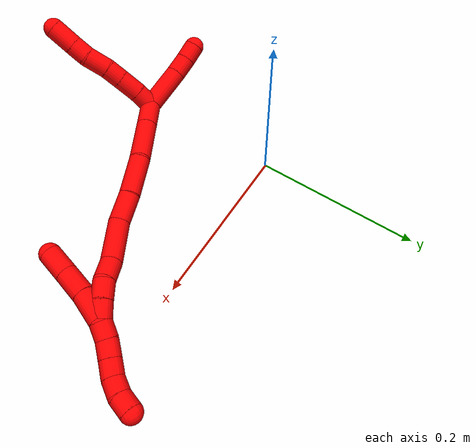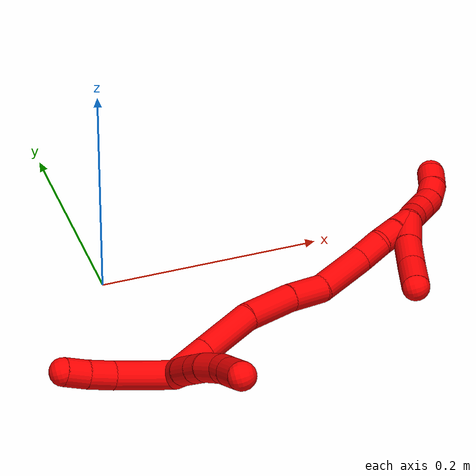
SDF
<sdf version="1.7">
 <world name="default">
  <model name="2">
   <static>0</static>
   <link name="2">
    <collision name="collision-cylinder-e_1_2_8">
     <pose>-0.007378 0.007824 0.005245 -0.980261 -0.664457 0.364095</pose>
     <geometry><cylinder><radius>0.0125</radius><length>0.023931</length></cylinder></geometry>
     <surface>
      <friction><ode><mu>1.16</mu><mu2>1.16</mu2><slip1>0</slip1><slip2>0</slip2></ode></friction>
      <contact><ode><kp>1e+06</kp><kd>1</kd><max_vel>0</max_vel><min_depth>0.001</min_depth></ode></contact>
     </surface>
    </collision>
    <visual name="visual-cylinder-e_1_2_8">
     <pose>-0.007378 0.007824 0.005245 -0.980261 -0.664457 0.364095</pose>
     <geometry><cylinder><radius>0.0125</radius><length>0.023931</length></cylinder></geometry>
     <material><ambient>1 0 0 1</ambient></material>
    </visual>
    <collision name="collision-cylinder-e_2_8_9">
     <pose>-0.023645 0.023575 0.017359 -0.856748 -0.703025 0.33187</pose>
     <geometry><cylinder><radius>0.0125</radius><length>0.027498</length></cylinder></geometry>
     <surface>
      <friction><ode><mu>1.16</mu><mu2>1.16</mu2><slip1>0</slip1><slip2>0</slip2></ode></friction>
      <contact><ode><kp>1e+06</kp><kd>1</kd><max_vel>0</max_vel><min_depth>0.001</min_depth></ode></contact>
     </surface>
    </collision>
    <visual name="visual-cylinder-e_2_8_9">
     <pose>-0.023645 0.023575 0.017359 -0.856748 -0.703025 0.33187</pose>
     <geometry><cylinder><radius>0.0125</radius><length>0.027498</length></cylinder></geometry>
     <material><ambient>1 0 0 1</ambient></material>
    </visual>
    <collision name="collision-cylinder-e_3_9_10">
     <pose>-0.039159 0.037291 0.029331 -0.84837 -0.709403 0.331447</pose>
     <geometry><cylinder><radius>0.0125</radius><length>0.02034</length></cylinder></geometry>
     <surface>
      <friction><ode><mu>1.16</mu><mu2>1.16</mu2><slip1>0</slip1><slip2>0</slip2></ode></friction>
      <contact><ode><kp>1e+06</kp><kd>1</kd><max_vel>0</max_vel><min_depth>0.001</min_depth></ode></contact>
     </surface>
    </collision>
    <visual name="visual-cylinder-e_3_9_10">
     <pose>-0.039159 0.037291 0.029331 -0.84837 -0.709403 0.331447</pose>
     <geometry><cylinder><radius>0.0125</radius><length>0.02034</length></cylinder></geometry>
     <material><ambient>1 0 0 1</ambient></material>
    </visual>
    <collision name="collision-cylinder-e_4_10_11">
     <pose>-0.055392 0.04919 0.042228 -0.664783 -0.770235 0.278054</pose>
     <geometry><cylinder><radius>0.0125</radius><length>0.027598</length></cylinder></geometry>
     <surface>
      <friction><ode><mu>1.16</mu><mu2>1.16</mu2><slip1>0</slip1><slip2>0</slip2></ode></friction>
      <contact><ode><kp>1e+06</kp><kd>1</kd><max_vel>0</max_vel><min_depth>0.001</min_depth></ode></contact>
     </surface>
    </collision>
    <visual name="visual-cylinder-e_4_10_11">
     <pose>-0.055392 0.04919 0.042228 -0.664783 -0.770235 0.278054</pose>
     <geometry><cylinder><radius>0.0125</radius><length>0.027598</length></cylinder></geometry>
     <material><ambient>1 0 0 1</ambient></material>
    </visual>
    <collision name="collision-cylinder-e_5_11_12">
     <pose>-0.073027 0.060206 0.053758 -0.920126 -0.915763 0.479029</pose>
     <geometry><cylinder><radius>0.0125</radius><length>0.020244</length></cylinder></geometry>
     <surface>
      <friction><ode><mu>1.16</mu><mu2>1.16</mu2><slip1>0</slip1><slip2>0</slip2></ode></friction>
      <contact><ode><kp>1e+06</kp><kd>1</kd><max_vel>0</max_vel><min_depth>0.001</min_depth></ode></contact>
     </surface>
    </collision>
    <visual name="visual-cylinder-e_5_11_12">
     <pose>-0.073027 0.060206 0.053758 -0.920126 -0.915763 0.479029</pose>
     <geometry><cylinder><radius>0.0125</radius><length>0.020244</length></cylinder></geometry>
     <material><ambient>1 0 0 1</ambient></material>
    </visual>
    <collision name="collision-cylinder-e_6_12_6">
     <pose>-0.092992 0.072747 0.062976 -0.94796 -0.903797 0.488077</pose>
     <geometry><cylinder><radius>0.0125</radius><length>0.03039</length></cylinder></geometry>
     <surface>
      <friction><ode><mu>1.16</mu><mu2>1.16</mu2><slip1>0</slip1><slip2>0</slip2></ode></friction>
      <contact><ode><kp>1e+06</kp><kd>1</kd><max_vel>0</max_vel><min_depth>0.001</min_depth></ode></contact>
     </surface>
    </collision>
    <visual name="visual-cylinder-e_6_12_6">
     <pose>-0.092992 0.072747 0.062976 -0.94796 -0.903797 0.488077</pose>
     <geometry><cylinder><radius>0.0125</radius><length>0.03039</length></cylinder></geometry>
     <material><ambient>1 0 0 1</ambient></material>
    </visual>
    <collision name="collision-cylinder-e_1_2_13">
     <pose>-0.00381 0.01335 -0.023746 -2.62941 -0.138953 0.519526</pose>
     <geometry><cylinder><radius>0.0125</radius><length>0.055013</length></cylinder></geometry>
     <surface>
      <friction><ode><mu>1.16</mu><mu2>1.16</mu2><slip1>0</slip1><slip2>0</slip2></ode></friction>
      <contact><ode><kp>1e+06</kp><kd>1</kd><max_vel>0</max_vel><min_depth>0.001</min_depth></ode></contact>
     </surface>
    </collision>
    <visual name="visual-cylinder-e_1_2_13">
     <pose>-0.00381 0.01335 -0.023746 -2.62941 -0.138953 0.519526</pose>
     <geometry><cylinder><radius>0.0125</radius><length>0.055013</length></cylinder></geometry>
     <material><ambient>1 0 0 1</ambient></material>
    </visual>
    <collision name="collision-cylinder-e_2_13_14">
     <pose>-0.009313 0.033084 -0.057278 -2.56366 -0.143916 0.475753</pose>
     <geometry><cylinder><radius>0.0125</radius><length>0.023612</length></cylinder></geometry>
     <surface>
      <friction><ode><mu>1.16</mu><mu2>1.16</mu2><slip1>0</slip1><slip2>0</slip2></ode></friction>
      <contact><ode><kp>1e+06</kp><kd>1</kd><max_vel>0</max_vel><min_depth>0.001</min_depth></ode></contact>
     </surface>
    </collision>
    <visual name="visual-cylinder-e_2_13_14">
     <pose>-0.009313 0.033084 -0.057278 -2.56366 -0.143916 0.475753</pose>
     <geometry><cylinder><radius>0.0125</radius><length>0.023612</length></cylinder></geometry>
     <material><ambient>1 0 0 1</ambient></material>
    </visual>
    <collision name="collision-cylinder-e_3_14_5">
     <pose>-0.01245 0.045979 -0.075414 -2.47925 -0.135554 0.389832</pose>
     <geometry><cylinder><radius>0.0125</radius><length>0.021375</length></cylinder></geometry>
     <surface>
      <friction><ode><mu>1.16</mu><mu2>1.16</mu2><slip1>0</slip1><slip2>0</slip2></ode></friction>
      <contact><ode><kp>1e+06</kp><kd>1</kd><max_vel>0</max_vel><min_depth>0.001</min_depth></ode></contact>
     </surface>
    </collision>
    <visual name="visual-cylinder-e_3_14_5">
     <pose>-0.01245 0.045979 -0.075414 -2.47925 -0.135554 0.389832</pose>
     <geometry><cylinder><radius>0.0125</radius><length>0.021375</length></cylinder></geometry>
     <material><ambient>1 0 0 1</ambient></material>
    </visual>
    <collision name="collision-cylinder-e_1_2_15">
     <pose>0.012448 -0.003376 0.013621 0.242984 0.72558 0.092625</pose>
     <geometry><cylinder><radius>0.0125</radius><length>0.037517</length></cylinder></geometry>
     <surface>
      <friction><ode><mu>1.16</mu><mu2>1.16</mu2><slip1>0</slip1><slip2>0</slip2></ode></friction>
      <contact><ode><kp>1e+06</kp><kd>1</kd><max_vel>0</max_vel><min_depth>0.001</min_depth></ode></contact>
     </surface>
    </collision>
    <visual name="visual-cylinder-e_1_2_15">
     <pose>0.012448 -0.003376 0.013621 0.242984 0.72558 0.092625</pose>
     <geometry><cylinder><radius>0.0125</radius><length>0.037517</length></cylinder></geometry>
     <material><ambient>1 0 0 1</ambient></material>
    </visual>
    <collision name="collision-cylinder-e_2_15_16">
     <pose>0.043171 -0.011727 0.047338 0.242657 0.72324 0.092174</pose>
     <geometry><cylinder><radius>0.0125</radius><length>0.055228</length></cylinder></geometry>
     <surface>
      <friction><ode><mu>1.16</mu><mu2>1.16</mu2><slip1>0</slip1><slip2>0</slip2></ode></friction>
      <contact><ode><kp>1e+06</kp><kd>1</kd><max_vel>0</max_vel><min_depth>0.001</min_depth></ode></contact>
     </surface>
    </collision>
    <visual name="visual-cylinder-e_2_15_16">
     <pose>0.043171 -0.011727 0.047338 0.242657 0.72324 0.092174</pose>
     <geometry><cylinder><radius>0.0125</radius><length>0.055228</length></cylinder></geometry>
     <material><ambient>1 0 0 1</ambient></material>
    </visual>
    <collision name="collision-cylinder-e_3_16_17">
     <pose>0.075075 -0.025684 0.08595 0.451667 0.584901 0.138129</pose>
     <geometry><cylinder><radius>0.0125</radius><length>0.049369</length></cylinder></geometry>
     <surface>
      <friction><ode><mu>1.16</mu><mu2>1.16</mu2><slip1>0</slip1><slip2>0</slip2></ode></friction>
      <contact><ode><kp>1e+06</kp><kd>1</kd><max_vel>0</max_vel><min_depth>0.001</min_depth></ode></contact>
     </surface>
    </collision>
    <visual name="visual-cylinder-e_3_16_17">
     <pose>0.075075 -0.025684 0.08595 0.451667 0.584901 0.138129</pose>
     <geometry><cylinder><radius>0.0125</radius><length>0.049369</length></cylinder></geometry>
     <material><ambient>1 0 0 1</ambient></material>
    </visual>
    <collision name="collision-cylinder-e_4_17_18">
     <pose>0.096899 -0.042298 0.11834 0.502848 0.477643 0.124911</pose>
     <geometry><cylinder><radius>0.0125</radius><length>0.035657</length></cylinder></geometry>
     <surface>
      <friction><ode><mu>1.16</mu><mu2>1.16</mu2><slip1>0</slip1><slip2>0</slip2></ode></friction>
      <contact><ode><kp>1e+06</kp><kd>1</kd><max_vel>0</max_vel><min_depth>0.001</min_depth></ode></contact>
     </surface>
    </collision>
    <visual name="visual-cylinder-e_4_17_18">
     <pose>0.096899 -0.042298 0.11834 0.502848 0.477643 0.124911</pose>
     <geometry><cylinder><radius>0.0125</radius><length>0.035657</length></cylinder></geometry>
     <material><ambient>1 0 0 1</ambient></material>
    </visual>
    <collision name="collision-cylinder-e_5_18_19">
     <pose>0.122404 -0.055732 0.150947 0.300422 0.723093 0.114348</pose>
     <geometry><cylinder><radius>0.0125</radius><length>0.052316</length></cylinder></geometry>
     <surface>
      <friction><ode><mu>1.16</mu><mu2>1.16</mu2><slip1>0</slip1><slip2>0</slip2></ode></friction>
      <contact><ode><kp>1e+06</kp><kd>1</kd><max_vel>0</max_vel><min_depth>0.001</min_depth></ode></contact>
     </surface>
    </collision>
    <visual name="visual-cylinder-e_5_18_19">
     <pose>0.122404 -0.055732 0.150947 0.300422 0.723093 0.114348</pose>
     <geometry><cylinder><radius>0.0125</radius><length>0.052316</length></cylinder></geometry>
     <material><ambient>1 0 0 1</ambient></material>
    </visual>
    <collision name="collision-cylinder-e_6_19_20">
     <pose>0.147139 -0.062046 0.17991 0.04984 0.62741 0.016172</pose>
     <geometry><cylinder><radius>0.0125</radius><length>0.025301</length></cylinder></geometry>
     <surface>
      <friction><ode><mu>1.16</mu><mu2>1.16</mu2><slip1>0</slip1><slip2>0</slip2></ode></friction>
      <contact><ode><kp>1e+06</kp><kd>1</kd><max_vel>0</max_vel><min_depth>0.001</min_depth></ode></contact>
     </surface>
    </collision>
    <visual name="visual-cylinder-e_6_19_20">
     <pose>0.147139 -0.062046 0.17991 0.04984 0.62741 0.016172</pose>
     <geometry><cylinder><radius>0.0125</radius><length>0.025301</length></cylinder></geometry>
     <material><ambient>1 0 0 1</ambient></material>
    </visual>
    <collision name="collision-cylinder-e_7_20_21">
     <pose>0.162553 -0.065907 0.197802 0.412242 0.762366 0.16721</pose>
     <geometry><cylinder><radius>0.0125</radius><length>0.023131</length></cylinder></geometry>
     <surface>
      <friction><ode><mu>1.16</mu><mu2>1.16</mu2><slip1>0</slip1><slip2>0</slip2></ode></friction>
      <contact><ode><kp>1e+06</kp><kd>1</kd><max_vel>0</max_vel><min_depth>0.001</min_depth></ode></contact>
     </surface>
    </collision>
    <visual name="visual-cylinder-e_7_20_21">
     <pose>0.162553 -0.065907 0.197802 0.412242 0.762366 0.16721</pose>
     <geometry><cylinder><radius>0.0125</radius><length>0.023131</length></cylinder></geometry>
     <material><ambient>1 0 0 1</ambient></material>
    </visual>
    <collision name="collision-cylinder-e_8_21_1">
     <pose>0.178162 -0.073119 0.211975 0.535279 0.788861 0.2273</pose>
     <geometry><cylinder><radius>0.0125</radius><length>0.02148</length></cylinder></geometry>
     <surface>
      <friction><ode><mu>1.16</mu><mu2>1.16</mu2><slip1>0</slip1><slip2>0</slip2></ode></friction>
      <contact><ode><kp>1e+06</kp><kd>1</kd><max_vel>0</max_vel><min_depth>0.001</min_depth></ode></contact>
     </surface>
    </collision>
    <visual name="visual-cylinder-e_8_21_1">
     <pose>0.178162 -0.073119 0.211975 0.535279 0.788861 0.2273</pose>
     <geometry><cylinder><radius>0.0125</radius><length>0.02148</length></cylinder></geometry>
     <material><ambient>1 0 0 1</ambient></material>
    </visual>
    <collision name="collision-cylinder-e_1_1_22">
     <pose>0.167957 -0.074122 0.216201 -2.24501 -1.36844 2.07606</pose>
     <geometry><cylinder><radius>0.0125</radius><length>0.036393</length></cylinder></geometry>
     <surface>
      <friction><ode><mu>1.16</mu><mu2>1.16</mu2><slip1>0</slip1><slip2>0</slip2></ode></friction>
      <contact><ode><kp>1e+06</kp><kd>1</kd><max_vel>0</max_vel><min_depth>0.001</min_depth></ode></contact>
     </surface>
    </collision>
    <visual name="visual-cylinder-e_1_1_22">
     <pose>0.167957 -0.074122 0.216201 -2.24501 -1.36844 2.07606</pose>
     <geometry><cylinder><radius>0.0125</radius><length>0.036393</length></cylinder></geometry>
     <material><ambient>1 0 0 1</ambient></material>
    </visual>
    <collision name="collision-cylinder-e_2_22_23">
     <pose>0.134154 -0.069373 0.213431 -1.82294 -1.44911 1.70327</pose>
     <geometry><cylinder><radius>0.0125</radius><length>0.032193</length></cylinder></geometry>
     <surface>
      <friction><ode><mu>1.16</mu><mu2>1.16</mu2><slip1>0</slip1><slip2>0</slip2></ode></friction>
      <contact><ode><kp>1e+06</kp><kd>1</kd><max_vel>0</max_vel><min_depth>0.001</min_depth></ode></contact>
     </surface>
    </collision>
    <visual name="visual-cylinder-e_2_22_23">
     <pose>0.134154 -0.069373 0.213431 -1.82294 -1.44911 1.70327</pose>
     <geometry><cylinder><radius>0.0125</radius><length>0.032193</length></cylinder></geometry>
     <material><ambient>1 0 0 1</ambient></material>
    </visual>
    <collision name="collision-cylinder-e_3_23_4">
     <pose>0.102675 -0.064951 0.212861 -1.60327 -1.40891 1.44104</pose>
     <geometry><cylinder><radius>0.0125</radius><length>0.031414</length></cylinder></geometry>
     <surface>
      <friction><ode><mu>1.16</mu><mu2>1.16</mu2><slip1>0</slip1><slip2>0</slip2></ode></friction>
      <contact><ode><kp>1e+06</kp><kd>1</kd><max_vel>0</max_vel><min_depth>0.001</min_depth></ode></contact>
     </surface>
    </collision>
    <visual name="visual-cylinder-e_3_23_4">
     <pose>0.102675 -0.064951 0.212861 -1.60327 -1.40891 1.44104</pose>
     <geometry><cylinder><radius>0.0125</radius><length>0.031414</length></cylinder></geometry>
     <material><ambient>1 0 0 1</ambient></material>
    </visual>
    <collision name="collision-cylinder-e_1_1_24">
     <pose>0.194094 -0.082063 0.220737 1.15372 0.981215 0.669031</pose>
     <geometry><cylinder><radius>0.0125</radius><length>0.02</length></cylinder></geometry>
     <surface>
      <friction><ode><mu>1.16</mu><mu2>1.16</mu2><slip1>0</slip1><slip2>0</slip2></ode></friction>
      <contact><ode><kp>1e+06</kp><kd>1</kd><max_vel>0</max_vel><min_depth>0.001</min_depth></ode></contact>
     </surface>
    </collision>
    <visual name="visual-cylinder-e_1_1_24">
     <pose>0.194094 -0.082063 0.220737 1.15372 0.981215 0.669031</pose>
     <geometry><cylinder><radius>0.0125</radius><length>0.02</length></cylinder></geometry>
     <material><ambient>1 0 0 1</ambient></material>
    </visual>
    <collision name="collision-cylinder-e_2_24_25">
     <pose>0.210512 -0.09133 0.227085 0.796015 0.945312 0.423513</pose>
     <geometry><cylinder><radius>0.0125</radius><length>0.02</length></cylinder></geometry>
     <surface>
      <friction><ode><mu>1.16</mu><mu2>1.16</mu2><slip1>0</slip1><slip2>0</slip2></ode></friction>
      <contact><ode><kp>1e+06</kp><kd>1</kd><max_vel>0</max_vel><min_depth>0.001</min_depth></ode></contact>
     </surface>
    </collision>
    <visual name="visual-cylinder-e_2_24_25">
     <pose>0.210512 -0.09133 0.227085 0.796015 0.945312 0.423513</pose>
     <geometry><cylinder><radius>0.0125</radius><length>0.02</length></cylinder></geometry>
     <material><ambient>1 0 0 1</ambient></material>
    </visual>
    <collision name="collision-cylinder-e_3_25_26">
     <pose>0.226711 -0.099557 0.235443 0.759081 0.942768 0.401157</pose>
     <geometry><cylinder><radius>0.0125</radius><length>0.02</length></cylinder></geometry>
     <surface>
      <friction><ode><mu>1.16</mu><mu2>1.16</mu2><slip1>0</slip1><slip2>0</slip2></ode></friction>
      <contact><ode><kp>1e+06</kp><kd>1</kd><max_vel>0</max_vel><min_depth>0.001</min_depth></ode></contact>
     </surface>
    </collision>
    <visual name="visual-cylinder-e_3_25_26">
     <pose>0.226711 -0.099557 0.235443 0.759081 0.942768 0.401157</pose>
     <geometry><cylinder><radius>0.0125</radius><length>0.02</length></cylinder></geometry>
     <material><ambient>1 0 0 1</ambient></material>
    </visual>
    <collision name="collision-cylinder-e_4_26_27">
     <pose>0.244235 -0.10476 0.242818 0.356565 1.23225 0.253813</pose>
     <geometry><cylinder><radius>0.0125</radius><length>0.02</length></cylinder></geometry>
     <surface>
      <friction><ode><mu>1.16</mu><mu2>1.16</mu2><slip1>0</slip1><slip2>0</slip2></ode></friction>
      <contact><ode><kp>1e+06</kp><kd>1</kd><max_vel>0</max_vel><min_depth>0.001</min_depth></ode></contact>
     </surface>
    </collision>
    <visual name="visual-cylinder-e_4_26_27">
     <pose>0.244235 -0.10476 0.242818 0.356565 1.23225 0.253813</pose>
     <geometry><cylinder><radius>0.0125</radius><length>0.02</length></cylinder></geometry>
     <material><ambient>1 0 0 1</ambient></material>
    </visual>
    <collision name="collision-cylinder-e_5_27_3">
     <pose>0.263606 -0.106786 0.24663 0.891142 1.45918 0.807237</pose>
     <geometry><cylinder><radius>0.0125</radius><length>0.02</length></cylinder></geometry>
     <surface>
      <friction><ode><mu>1.16</mu><mu2>1.16</mu2><slip1>0</slip1><slip2>0</slip2></ode></friction>
      <contact><ode><kp>1e+06</kp><kd>1</kd><max_vel>0</max_vel><min_depth>0.001</min_depth></ode></contact>
     </surface>
    </collision>
    <visual name="visual-cylinder-e_5_27_3">
     <pose>0.263606 -0.106786 0.24663 0.891142 1.45918 0.807237</pose>
     <geometry><cylinder><radius>0.0125</radius><length>0.02</length></cylinder></geometry>
     <material><ambient>1 0 0 1</ambient></material>
    </visual>
    <collision name="collision-sphere-3">
     <pose>0.273543 -0.107652 0.24733 0 -0 0</pose>
     <geometry><sphere><radius>0.0125</radius></sphere></geometry>
     <surface>
      <friction><ode><mu>1.16</mu><mu2>1.16</mu2><slip1>0</slip1><slip2>0</slip2></ode></friction>
      <contact><ode><kp>1e+06</kp><kd>1</kd><max_vel>0</max_vel><min_depth>0.001</min_depth></ode></contact>
     </surface>
    </collision>
    <visual name="visual-sphere-3">
     <pose>0.273543 -0.107652 0.24733 0 -0 0</pose>
     <geometry><sphere><radius>0.0125</radius></sphere></geometry>
     <material><ambient>1 0 0 1</ambient></material>
    </visual>
    <collision name="collision-sphere-27">
     <pose>0.253668 -0.10592 0.24593 0 -0 0</pose>
     <geometry><sphere><radius>0.0125</radius></sphere></geometry>
     <surface>
      <friction><ode><mu>1.16</mu><mu2>1.16</mu2><slip1>0</slip1><slip2>0</slip2></ode></friction>
      <contact><ode><kp>1e+06</kp><kd>1</kd><max_vel>0</max_vel><min_depth>0.001</min_depth></ode></contact>
     </surface>
    </collision>
    <visual name="visual-sphere-27">
     <pose>0.253668 -0.10592 0.24593 0 -0 0</pose>
     <geometry><sphere><radius>0.0125</radius></sphere></geometry>
     <material><ambient>1 0 0 1</ambient></material>
    </visual>
    <collision name="collision-sphere-26">
     <pose>0.234803 -0.103601 0.239706 0 -0 0</pose>
     <geometry><sphere><radius>0.0125</radius></sphere></geometry>
     <surface>
      <friction><ode><mu>1.16</mu><mu2>1.16</mu2><slip1>0</slip1><slip2>0</slip2></ode></friction>
      <contact><ode><kp>1e+06</kp><kd>1</kd><max_vel>0</max_vel><min_depth>0.001</min_depth></ode></contact>
     </surface>
    </collision>
    <visual name="visual-sphere-26">
     <pose>0.234803 -0.103601 0.239706 0 -0 0</pose>
     <geometry><sphere><radius>0.0125</radius></sphere></geometry>
     <material><ambient>1 0 0 1</ambient></material>
    </visual>
    <collision name="collision-sphere-25">
     <pose>0.218619 -0.095514 0.231181 0 -0 0</pose>
     <geometry><sphere><radius>0.0125</radius></sphere></geometry>
     <surface>
      <friction><ode><mu>1.16</mu><mu2>1.16</mu2><slip1>0</slip1><slip2>0</slip2></ode></friction>
      <contact><ode><kp>1e+06</kp><kd>1</kd><max_vel>0</max_vel><min_depth>0.001</min_depth></ode></contact>
     </surface>
    </collision>
    <visual name="visual-sphere-25">
     <pose>0.218619 -0.095514 0.231181 0 -0 0</pose>
     <geometry><sphere><radius>0.0125</radius></sphere></geometry>
     <material><ambient>1 0 0 1</ambient></material>
    </visual>
    <collision name="collision-sphere-24">
     <pose>0.202406 -0.087146 0.222989 0 -0 0</pose>
     <geometry><sphere><radius>0.0125</radius></sphere></geometry>
     <surface>
      <friction><ode><mu>1.16</mu><mu2>1.16</mu2><slip1>0</slip1><slip2>0</slip2></ode></friction>
      <contact><ode><kp>1e+06</kp><kd>1</kd><max_vel>0</max_vel><min_depth>0.001</min_depth></ode></contact>
     </surface>
    </collision>
    <visual name="visual-sphere-24">
     <pose>0.202406 -0.087146 0.222989 0 -0 0</pose>
     <geometry><sphere><radius>0.0125</radius></sphere></geometry>
     <material><ambient>1 0 0 1</ambient></material>
    </visual>
    <collision name="collision-sphere-4">
     <pose>0.087174 -0.06242 0.212779 0 -0 0</pose>
     <geometry><sphere><radius>0.0125</radius></sphere></geometry>
     <surface>
      <friction><ode><mu>1.16</mu><mu2>1.16</mu2><slip1>0</slip1><slip2>0</slip2></ode></friction>
      <contact><ode><kp>1e+06</kp><kd>1</kd><max_vel>0</max_vel><min_depth>0.001</min_depth></ode></contact>
     </surface>
    </collision>
    <visual name="visual-sphere-4">
     <pose>0.087174 -0.06242 0.212779 0 -0 0</pose>
     <geometry><sphere><radius>0.0125</radius></sphere></geometry>
     <material><ambient>1 0 0 1</ambient></material>
    </visual>
    <collision name="collision-sphere-23">
     <pose>0.118177 -0.067481 0.212943 0 -0 0</pose>
     <geometry><sphere><radius>0.0125</radius></sphere></geometry>
     <surface>
      <friction><ode><mu>1.16</mu><mu2>1.16</mu2><slip1>0</slip1><slip2>0</slip2></ode></friction>
      <contact><ode><kp>1e+06</kp><kd>1</kd><max_vel>0</max_vel><min_depth>0.001</min_depth></ode></contact>
     </surface>
    </collision>
    <visual name="visual-sphere-23">
     <pose>0.118177 -0.067481 0.212943 0 -0 0</pose>
     <geometry><sphere><radius>0.0125</radius></sphere></geometry>
     <material><ambient>1 0 0 1</ambient></material>
    </visual>
    <collision name="collision-sphere-22">
     <pose>0.150132 -0.071265 0.213918 0 -0 0</pose>
     <geometry><sphere><radius>0.0125</radius></sphere></geometry>
     <surface>
      <friction><ode><mu>1.16</mu><mu2>1.16</mu2><slip1>0</slip1><slip2>0</slip2></ode></friction>
      <contact><ode><kp>1e+06</kp><kd>1</kd><max_vel>0</max_vel><min_depth>0.001</min_depth></ode></contact>
     </surface>
    </collision>
    <visual name="visual-sphere-22">
     <pose>0.150132 -0.071265 0.213918 0 -0 0</pose>
     <geometry><sphere><radius>0.0125</radius></sphere></geometry>
     <material><ambient>1 0 0 1</ambient></material>
    </visual>
    <collision name="collision-sphere-1">
     <pose>0.185782 -0.076979 0.218484 0 -0 0</pose>
     <geometry><sphere><radius>0.0125</radius></sphere></geometry>
     <surface>
      <friction><ode><mu>1.16</mu><mu2>1.16</mu2><slip1>0</slip1><slip2>0</slip2></ode></friction>
      <contact><ode><kp>1e+06</kp><kd>1</kd><max_vel>0</max_vel><min_depth>0.001</min_depth></ode></contact>
     </surface>
    </collision>
    <visual name="visual-sphere-1">
     <pose>0.185782 -0.076979 0.218484 0 -0 0</pose>
     <geometry><sphere><radius>0.0125</radius></sphere></geometry>
     <material><ambient>1 0 0 1</ambient></material>
    </visual>
    <collision name="collision-sphere-21">
     <pose>0.170541 -0.069258 0.205465 0 -0 0</pose>
     <geometry><sphere><radius>0.0125</radius></sphere></geometry>
     <surface>
      <friction><ode><mu>1.16</mu><mu2>1.16</mu2><slip1>0</slip1><slip2>0</slip2></ode></friction>
      <contact><ode><kp>1e+06</kp><kd>1</kd><max_vel>0</max_vel><min_depth>0.001</min_depth></ode></contact>
     </surface>
    </collision>
    <visual name="visual-sphere-21">
     <pose>0.170541 -0.069258 0.205465 0 -0 0</pose>
     <geometry><sphere><radius>0.0125</radius></sphere></geometry>
     <material><ambient>1 0 0 1</ambient></material>
    </visual>
    <collision name="collision-sphere-12">
     <pose>-0.081054 0.065112 0.057493 0 -0 0</pose>
     <geometry><sphere><radius>0.0125</radius></sphere></geometry>
     <surface>
      <friction><ode><mu>1.16</mu><mu2>1.16</mu2><slip1>0</slip1><slip2>0</slip2></ode></friction>
      <contact><ode><kp>1e+06</kp><kd>1</kd><max_vel>0</max_vel><min_depth>0.001</min_depth></ode></contact>
     </surface>
    </collision>
    <visual name="visual-sphere-12">
     <pose>-0.081054 0.065112 0.057493 0 -0 0</pose>
     <geometry><sphere><radius>0.0125</radius></sphere></geometry>
     <material><ambient>1 0 0 1</ambient></material>
    </visual>
    <collision name="collision-sphere-11">
     <pose>-0.065 0.0553 0.050023 0 -0 0</pose>
     <geometry><sphere><radius>0.0125</radius></sphere></geometry>
     <surface>
      <friction><ode><mu>1.16</mu><mu2>1.16</mu2><slip1>0</slip1><slip2>0</slip2></ode></friction>
      <contact><ode><kp>1e+06</kp><kd>1</kd><max_vel>0</max_vel><min_depth>0.001</min_depth></ode></contact>
     </surface>
    </collision>
    <visual name="visual-sphere-11">
     <pose>-0.065 0.0553 0.050023 0 -0 0</pose>
     <geometry><sphere><radius>0.0125</radius></sphere></geometry>
     <material><ambient>1 0 0 1</ambient></material>
    </visual>
    <collision name="collision-sphere-10">
     <pose>-0.045784 0.04308 0.034433 0 -0 0</pose>
     <geometry><sphere><radius>0.0125</radius></sphere></geometry>
     <surface>
      <friction><ode><mu>1.16</mu><mu2>1.16</mu2><slip1>0</slip1><slip2>0</slip2></ode></friction>
      <contact><ode><kp>1e+06</kp><kd>1</kd><max_vel>0</max_vel><min_depth>0.001</min_depth></ode></contact>
     </surface>
    </collision>
    <visual name="visual-sphere-10">
     <pose>-0.045784 0.04308 0.034433 0 -0 0</pose>
     <geometry><sphere><radius>0.0125</radius></sphere></geometry>
     <material><ambient>1 0 0 1</ambient></material>
    </visual>
    <collision name="collision-sphere-9">
     <pose>-0.032535 0.031502 0.024228 0 -0 0</pose>
     <geometry><sphere><radius>0.0125</radius></sphere></geometry>
     <surface>
      <friction><ode><mu>1.16</mu><mu2>1.16</mu2><slip1>0</slip1><slip2>0</slip2></ode></friction>
      <contact><ode><kp>1e+06</kp><kd>1</kd><max_vel>0</max_vel><min_depth>0.001</min_depth></ode></contact>
     </surface>
    </collision>
    <visual name="visual-sphere-9">
     <pose>-0.032535 0.031502 0.024228 0 -0 0</pose>
     <geometry><sphere><radius>0.0125</radius></sphere></geometry>
     <material><ambient>1 0 0 1</ambient></material>
    </visual>
    <collision name="collision-sphere-2">
     <geometry><sphere><radius>0.0125</radius></sphere></geometry>
     <surface>
      <friction><ode><mu>1.16</mu><mu2>1.16</mu2><slip1>0</slip1><slip2>0</slip2></ode></friction>
      <contact><ode><kp>1e+06</kp><kd>1</kd><max_vel>0</max_vel><min_depth>0.001</min_depth></ode></contact>
     </surface>
    </collision>
    <visual name="visual-sphere-2">
     <geometry><sphere><radius>0.0125</radius></sphere></geometry>
     <material><ambient>1 0 0 1</ambient></material>
    </visual>
    <collision name="collision-sphere-19">
     <pose>0.139713 -0.061535 0.169681 0 -0 0</pose>
     <geometry><sphere><radius>0.0125</radius></sphere></geometry>
     <surface>
      <friction><ode><mu>1.16</mu><mu2>1.16</mu2><slip1>0</slip1><slip2>0</slip2></ode></friction>
      <contact><ode><kp>1e+06</kp><kd>1</kd><max_vel>0</max_vel><min_depth>0.001</min_depth></ode></contact>
     </surface>
    </collision>
    <visual name="visual-sphere-19">
     <pose>0.139713 -0.061535 0.169681 0 -0 0</pose>
     <geometry><sphere><radius>0.0125</radius></sphere></geometry>
     <material><ambient>1 0 0 1</ambient></material>
    </visual>
    <collision name="collision-sphere-8">
     <pose>-0.014756 0.015649 0.01049 0 -0 0</pose>
     <geometry><sphere><radius>0.0125</radius></sphere></geometry>
     <surface>
      <friction><ode><mu>1.16</mu><mu2>1.16</mu2><slip1>0</slip1><slip2>0</slip2></ode></friction>
      <contact><ode><kp>1e+06</kp><kd>1</kd><max_vel>0</max_vel><min_depth>0.001</min_depth></ode></contact>
     </surface>
    </collision>
    <visual name="visual-sphere-8">
     <pose>-0.014756 0.015649 0.01049 0 -0 0</pose>
     <geometry><sphere><radius>0.0125</radius></sphere></geometry>
     <material><ambient>1 0 0 1</ambient></material>
    </visual>
    <collision name="collision-sphere-6">
     <pose>-0.104931 0.080382 0.06846 0 -0 0</pose>
     <geometry><sphere><radius>0.0125</radius></sphere></geometry>
     <surface>
      <friction><ode><mu>1.16</mu><mu2>1.16</mu2><slip1>0</slip1><slip2>0</slip2></ode></friction>
      <contact><ode><kp>1e+06</kp><kd>1</kd><max_vel>0</max_vel><min_depth>0.001</min_depth></ode></contact>
     </surface>
    </collision>
    <visual name="visual-sphere-6">
     <pose>-0.104931 0.080382 0.06846 0 -0 0</pose>
     <geometry><sphere><radius>0.0125</radius></sphere></geometry>
     <material><ambient>1 0 0 1</ambient></material>
    </visual>
    <collision name="collision-sphere-13">
     <pose>-0.00762 0.026701 -0.047491 0 -0 0</pose>
     <geometry><sphere><radius>0.0125</radius></sphere></geometry>
     <surface>
      <friction><ode><mu>1.16</mu><mu2>1.16</mu2><slip1>0</slip1><slip2>0</slip2></ode></friction>
      <contact><ode><kp>1e+06</kp><kd>1</kd><max_vel>0</max_vel><min_depth>0.001</min_depth></ode></contact>
     </surface>
    </collision>
    <visual name="visual-sphere-13">
     <pose>-0.00762 0.026701 -0.047491 0 -0 0</pose>
     <geometry><sphere><radius>0.0125</radius></sphere></geometry>
     <material><ambient>1 0 0 1</ambient></material>
    </visual>
    <collision name="collision-sphere-14">
     <pose>-0.011006 0.039466 -0.067064 0 -0 0</pose>
     <geometry><sphere><radius>0.0125</radius></sphere></geometry>
     <surface>
      <friction><ode><mu>1.16</mu><mu2>1.16</mu2><slip1>0</slip1><slip2>0</slip2></ode></friction>
      <contact><ode><kp>1e+06</kp><kd>1</kd><max_vel>0</max_vel><min_depth>0.001</min_depth></ode></contact>
     </surface>
    </collision>
    <visual name="visual-sphere-14">
     <pose>-0.011006 0.039466 -0.067064 0 -0 0</pose>
     <geometry><sphere><radius>0.0125</radius></sphere></geometry>
     <material><ambient>1 0 0 1</ambient></material>
    </visual>
    <collision name="collision-sphere-5">
     <pose>-0.013895 0.052491 -0.083765 0 -0 0</pose>
     <geometry><sphere><radius>0.0125</radius></sphere></geometry>
     <surface>
      <friction><ode><mu>1.16</mu><mu2>1.16</mu2><slip1>0</slip1><slip2>0</slip2></ode></friction>
      <contact><ode><kp>1e+06</kp><kd>1</kd><max_vel>0</max_vel><min_depth>0.001</min_depth></ode></contact>
     </surface>
    </collision>
    <visual name="visual-sphere-5">
     <pose>-0.013895 0.052491 -0.083765 0 -0 0</pose>
     <geometry><sphere><radius>0.0125</radius></sphere></geometry>
     <material><ambient>1 0 0 1</ambient></material>
    </visual>
    <collision name="collision-sphere-15">
     <pose>0.024895 -0.006753 0.027243 0 -0 0</pose>
     <geometry><sphere><radius>0.0125</radius></sphere></geometry>
     <surface>
      <friction><ode><mu>1.16</mu><mu2>1.16</mu2><slip1>0</slip1><slip2>0</slip2></ode></friction>
      <contact><ode><kp>1e+06</kp><kd>1</kd><max_vel>0</max_vel><min_depth>0.001</min_depth></ode></contact>
     </surface>
    </collision>
    <visual name="visual-sphere-15">
     <pose>0.024895 -0.006753 0.027243 0 -0 0</pose>
     <geometry><sphere><radius>0.0125</radius></sphere></geometry>
     <material><ambient>1 0 0 1</ambient></material>
    </visual>
    <collision name="collision-sphere-16">
     <pose>0.061446 -0.016701 0.067433 0 -0 0</pose>
     <geometry><sphere><radius>0.0125</radius></sphere></geometry>
     <surface>
      <friction><ode><mu>1.16</mu><mu2>1.16</mu2><slip1>0</slip1><slip2>0</slip2></ode></friction>
      <contact><ode><kp>1e+06</kp><kd>1</kd><max_vel>0</max_vel><min_depth>0.001</min_depth></ode></contact>
     </surface>
    </collision>
    <visual name="visual-sphere-16">
     <pose>0.061446 -0.016701 0.067433 0 -0 0</pose>
     <geometry><sphere><radius>0.0125</radius></sphere></geometry>
     <material><ambient>1 0 0 1</ambient></material>
    </visual>
    <collision name="collision-sphere-17">
     <pose>0.088704 -0.034667 0.104467 0 -0 0</pose>
     <geometry><sphere><radius>0.0125</radius></sphere></geometry>
     <surface>
      <friction><ode><mu>1.16</mu><mu2>1.16</mu2><slip1>0</slip1><slip2>0</slip2></ode></friction>
      <contact><ode><kp>1e+06</kp><kd>1</kd><max_vel>0</max_vel><min_depth>0.001</min_depth></ode></contact>
     </surface>
    </collision>
    <visual name="visual-sphere-17">
     <pose>0.088704 -0.034667 0.104467 0 -0 0</pose>
     <geometry><sphere><radius>0.0125</radius></sphere></geometry>
     <material><ambient>1 0 0 1</ambient></material>
    </visual>
    <collision name="collision-sphere-18">
     <pose>0.105095 -0.049928 0.132213 0 -0 0</pose>
     <geometry><sphere><radius>0.0125</radius></sphere></geometry>
     <surface>
      <friction><ode><mu>1.16</mu><mu2>1.16</mu2><slip1>0</slip1><slip2>0</slip2></ode></friction>
      <contact><ode><kp>1e+06</kp><kd>1</kd><max_vel>0</max_vel><min_depth>0.001</min_depth></ode></contact>
     </surface>
    </collision>
    <visual name="visual-sphere-18">
     <pose>0.105095 -0.049928 0.132213 0 -0 0</pose>
     <geometry><sphere><radius>0.0125</radius></sphere></geometry>
     <material><ambient>1 0 0 1</ambient></material>
    </visual>
    <collision name="collision-sphere-20">
     <pose>0.154566 -0.062556 0.190138 0 -0 0</pose>
     <geometry><sphere><radius>0.0125</radius></sphere></geometry>
     <surface>
      <friction><ode><mu>1.16</mu><mu2>1.16</mu2><slip1>0</slip1><slip2>0</slip2></ode></friction>
      <contact><ode><kp>1e+06</kp><kd>1</kd><max_vel>0</max_vel><min_depth>0.001</min_depth></ode></contact>
     </surface>
    </collision>
    <visual name="visual-sphere-20">
     <pose>0.154566 -0.062556 0.190138 0 -0 0</pose>
     <geometry><sphere><radius>0.0125</radius></sphere></geometry>
     <material><ambient>1 0 0 1</ambient></material>
    </visual>
    <inertial>
     <pose>0.074686 -0.025217 0.105523 0 -0 0</pose>
     <mass>0.75</mass>
     <inertia><ixx>0.0001</ixx><ixy>0</ixy><ixz>0</ixz><iyy>9.8e-05</iyy><iyz>0</iyz><izz>-2e-06</izz></inertia>
    </inertial>
   </link>
   <pose>0.0121 -0.167929 0.021784 1.28968 -0.098897 1.3613</pose>
  </model>
 </world>
</sdf>
